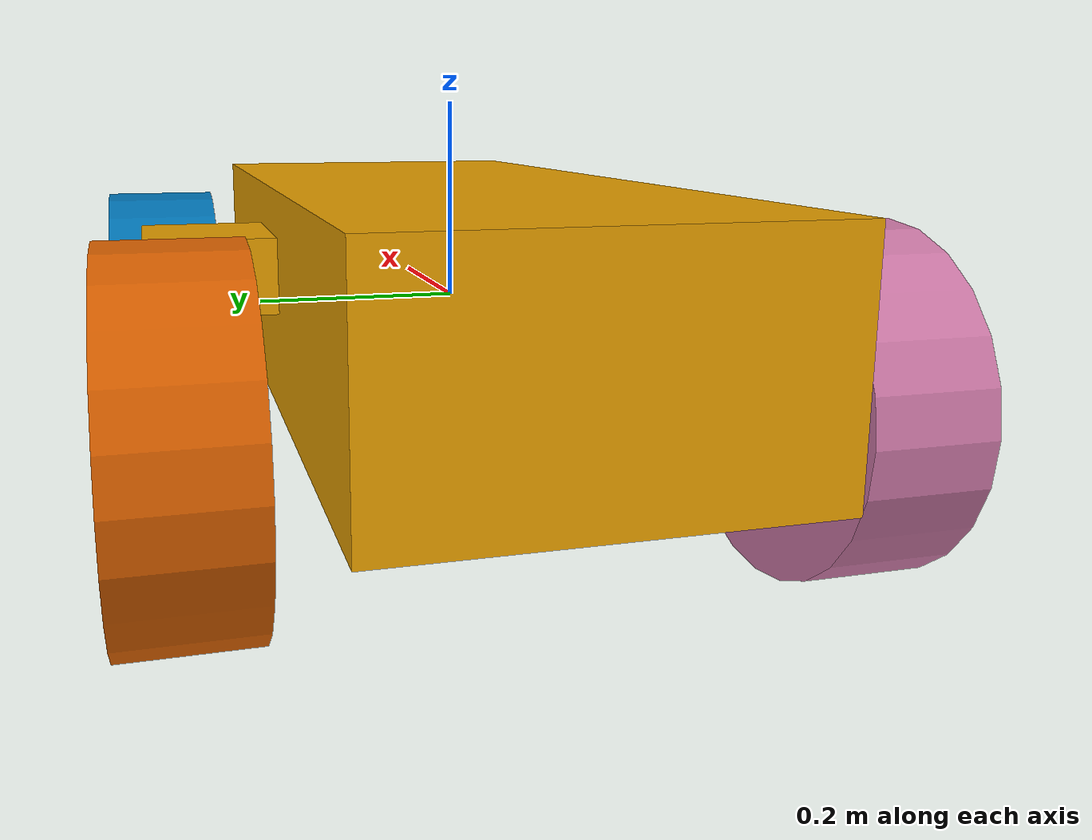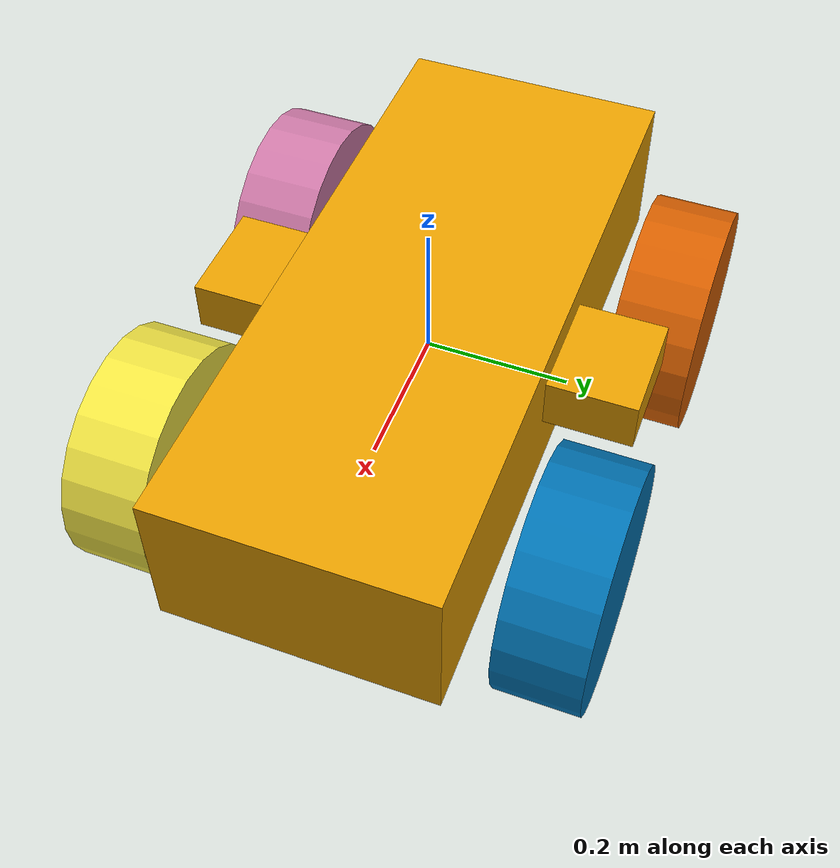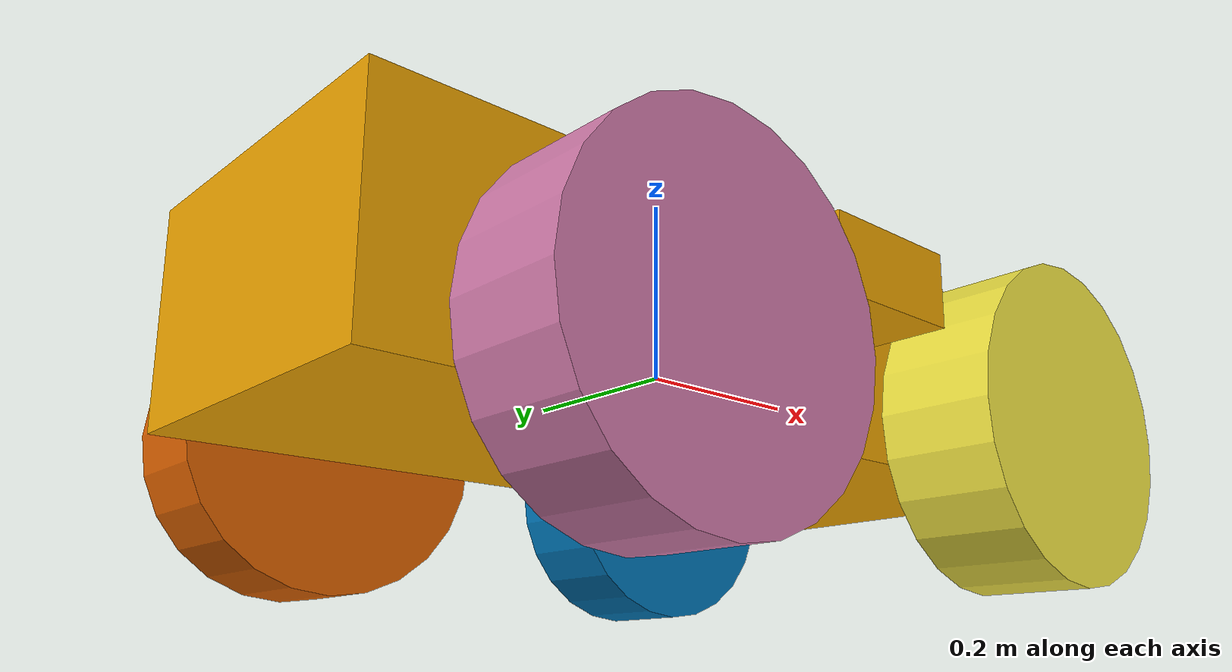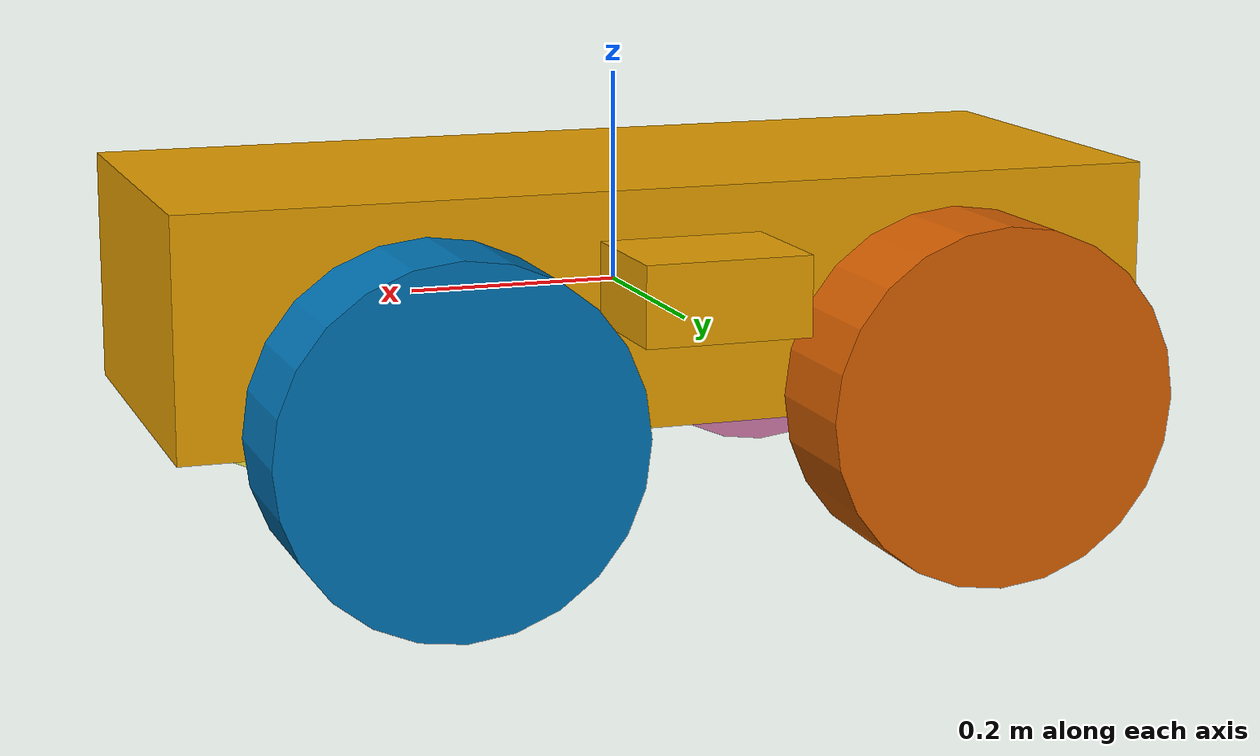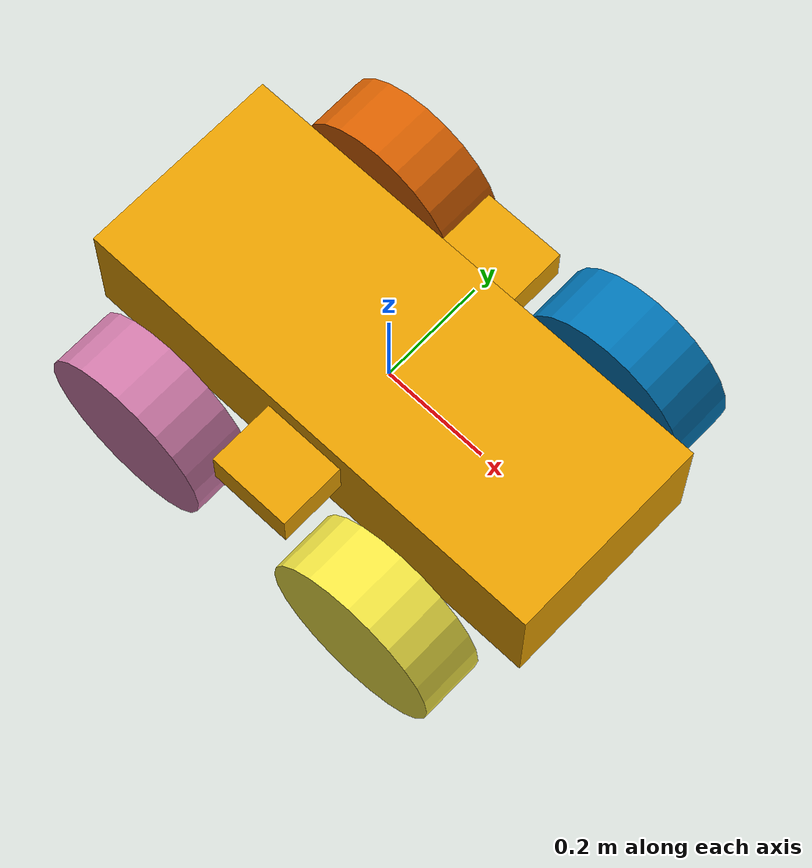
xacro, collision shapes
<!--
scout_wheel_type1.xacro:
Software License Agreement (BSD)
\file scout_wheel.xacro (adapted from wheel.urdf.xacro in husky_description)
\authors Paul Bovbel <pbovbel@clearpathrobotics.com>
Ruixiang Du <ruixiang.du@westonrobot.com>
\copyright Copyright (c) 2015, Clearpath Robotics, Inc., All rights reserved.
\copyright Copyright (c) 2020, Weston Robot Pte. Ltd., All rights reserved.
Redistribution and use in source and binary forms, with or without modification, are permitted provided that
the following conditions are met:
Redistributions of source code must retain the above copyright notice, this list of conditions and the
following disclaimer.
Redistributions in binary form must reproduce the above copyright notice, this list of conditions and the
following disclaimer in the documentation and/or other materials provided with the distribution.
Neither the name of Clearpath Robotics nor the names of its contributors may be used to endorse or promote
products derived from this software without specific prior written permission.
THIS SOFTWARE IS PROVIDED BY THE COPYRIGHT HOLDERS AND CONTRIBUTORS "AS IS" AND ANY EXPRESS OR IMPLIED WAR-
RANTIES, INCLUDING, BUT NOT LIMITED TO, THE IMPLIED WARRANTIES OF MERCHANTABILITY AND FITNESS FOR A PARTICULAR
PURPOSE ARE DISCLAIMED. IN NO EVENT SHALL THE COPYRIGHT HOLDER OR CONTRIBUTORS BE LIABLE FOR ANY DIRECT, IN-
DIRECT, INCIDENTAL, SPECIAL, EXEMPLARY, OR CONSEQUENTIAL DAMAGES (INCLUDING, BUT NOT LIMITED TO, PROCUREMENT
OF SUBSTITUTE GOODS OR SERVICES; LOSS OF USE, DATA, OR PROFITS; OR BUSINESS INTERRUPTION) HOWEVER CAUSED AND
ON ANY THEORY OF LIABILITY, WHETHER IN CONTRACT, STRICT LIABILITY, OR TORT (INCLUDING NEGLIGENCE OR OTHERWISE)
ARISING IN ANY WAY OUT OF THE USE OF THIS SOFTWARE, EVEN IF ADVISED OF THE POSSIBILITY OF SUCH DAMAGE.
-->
<?xml version="1.0"?>

<robot name="scout_v2"
    xmlns:xacro="http://ros.org/wiki/xacro">

    <xacro:arg name="robot_namespace" default="/" />

    <xacro:include filename="$(find scout_description)/urdf/scout_v2/scout_wheel_type1.xacro" />
    <xacro:include filename="$(find scout_description)/urdf/scout_v2/scout_wheel_type2.xacro" />

    <!-- Variables -->
    <xacro:property name="M_PI" value="3.14159"/>

    <!-- Vehicle Geometries -->
    <xacro:property name="base_x_size" value="0.9250000" />
    <xacro:property name="base_y_size" value="0.380000" />
    <xacro:property name="base_z_size" value="0.220000" />

    <xacro:property name="wheelbase" value="0.498" />
    <xacro:property name="track" value="0.58306" />
    <xacro:property name="wheel_vertical_offset" value="-0.0702" />

    <xacro:property name="wheel_length" value="0.11653" />
    <xacro:property name="wheel_radius" value="0.16459" />

    <!-- Base link -->
    <link name="base_link">
        <visual>
            <origin xyz="0 0 0" rpy="0 0 0" />
            <geometry>
                <mesh filename="package://scout_description/meshes/scout_v2/base_link.dae" />
            </geometry>
        </visual>
        <collision>
            <origin xyz="0 0 0.008" rpy="0 0 0" />
            <geometry>
                <box size="${base_x_size} ${base_y_size} ${base_z_size}"/>
            </geometry>
        </collision>
        <collision>
            <origin xyz="0 0 ${base_z_size/6}" rpy="0 0 0" />
            <geometry>
                <box size="${base_x_size/6} ${base_y_size*1.65} ${base_z_size/3}"/>
            </geometry>
        </collision>
    </link>

    <link name="base_footprint"/>

    <joint name="base_footprint_joint" type="fixed">
        <origin xyz="0 0 ${wheel_vertical_offset - wheel_radius}" rpy="0 0 0" />
        <parent link="base_link" />
        <child link="base_footprint" />
    </joint>

    <link name="inertial_link">
        <inertial>
            <mass value="40" />
            <origin xyz="0.0 0.0 0.0" />
            <inertia ixx="2.288641" ixy="0" ixz="0" iyy="5.103976" iyz="0" izz="3.431465" />
        </inertial>
    </link>

    <joint name="inertial_joint" type="fixed">
        <origin xyz="0 0 0" rpy="0 0 0" />
        <parent link="base_link" />
        <child link="inertial_link" />
    </joint>

    <!-- Scout wheel macros -->
    <!-- wheel labeled from 0 to 3, conter-clockwise, starting from front right wheel -->
    <!-- motor 1 and 2 (left side) are mechanically installed in a reversed direction -->
    <xacro:scout_wheel_type1 wheel_prefix="front_right">
        <origin xyz="${wheelbase/2} ${-track/2} ${wheel_vertical_offset}" rpy="${M_PI} 0 0" />
    </xacro:scout_wheel_type1>
    <xacro:scout_wheel_type2 wheel_prefix="front_left">
        <origin xyz="${wheelbase/2} ${track/2} ${wheel_vertical_offset}" rpy="${M_PI} 0 0" />
    </xacro:scout_wheel_type2>
    <xacro:scout_wheel_type1 wheel_prefix="rear_left">
        <origin xyz="${-wheelbase/2} ${track/2} ${wheel_vertical_offset}" rpy="${M_PI} 0 0" />
    </xacro:scout_wheel_type1>
    <xacro:scout_wheel_type2 wheel_prefix="rear_right">
        <origin xyz="${-wheelbase/2} ${-track/2} ${wheel_vertical_offset}" rpy="${M_PI} 0 0" />
    </xacro:scout_wheel_type2>

</robot>

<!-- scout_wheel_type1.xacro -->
<robot xmlns:xacro="http://ros.org/wiki/xacro" name="scout_wheel">

    <xacro:macro name="scout_wheel_type1" params="wheel_prefix *joint_pose">
        <link name="${wheel_prefix}_wheel_link">
            <inertial>
                <mass value="3" />
                <origin xyz="0 0 0" />
                <inertia ixx="0.023712" ixy="0" ixz="0" iyy="0.040635" iyz="0" izz="0.023712" />
            </inertial>
            <visual>
                <origin xyz="0 0 0" rpy="0 0 0" />
                <geometry>
                    <mesh filename="package://scout_description/meshes/scout_v2/wheel_type1.dae" />
                </geometry>
            </visual>
            <collision>
                <origin xyz="0 0 0" rpy="${M_PI/2} 0 0" />
                <geometry>
                    <cylinder length="${wheel_length}" radius="${wheel_radius}" />
                </geometry>
                <surface>
                    <friction>
                        <ode>
                        <!-- Coulomb friction coefficients (dimensionless) -->
                        <mu>5.0</mu>
                        <mu2>5.0</mu2>

                        <!-- Slip compliance (0 = no slip; small nonzero can help stability) -->
                        <slip1>0.01</slip1>
                        <slip2>0.01</slip2>
                        </ode>
                    </friction>

                    <contact>
                        <ode>
                        <!-- Contact stiffness/damping -->
                        <kp>1000000</kp>
                        <kd>100</kd>
                        </ode>
                    </contact>
                </surface>
            </collision>
        </link>

        <joint name="${wheel_prefix}_wheel" type="continuous">
            <parent link="base_link"/>
            <child link="${wheel_prefix}_wheel_link"/>
            <xacro:insert_block name="joint_pose"/>
            <axis xyz="0 -1 0" rpy="0 0 0" />
        </joint>
    </xacro:macro>

</robot>

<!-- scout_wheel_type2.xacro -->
<robot xmlns:xacro="http://ros.org/wiki/xacro" name="scout_wheel">

    <xacro:macro name="scout_wheel_type2" params="wheel_prefix *joint_pose">
        <link name="${wheel_prefix}_wheel_link">
            <inertial>
                <mass value="3" />
                <origin xyz="0 0 0" />

                <inertia ixx="0.023712" ixy="0" ixz="0" iyy="0.040635" iyz="0" izz="0.023712" />
            </inertial>
            <visual>
                <origin xyz="0 0 0" rpy="0 0 0" />
                <geometry>
                    <mesh filename="package://scout_description/meshes/scout_v2/wheel_type2.dae" />
                </geometry>
            </visual>
            <collision>
                <origin xyz="0 0 0" rpy="${M_PI/2} 0 0" />
                <geometry>
                    <cylinder length="${wheel_length}" radius="${wheel_radius}" />
                </geometry>
                <surface>
                    <friction>
                        <ode>
                        <!-- Coulomb friction coefficients (dimensionless) -->
                        <mu>5.0</mu>
                        <mu2>5.0</mu2>

                        <!-- Slip compliance (0 = no slip; small nonzero can help stability) -->
                        <slip1>0.01</slip1>
                        <slip2>0.01</slip2>
                        </ode>
                    </friction>

                    <contact>
                        <ode>
                        <!-- Contact stiffness/damping -->
                        <kp>1000000</kp>
                        <kd>100</kd>
                        </ode>
                    </contact>
                </surface>
            </collision>
        </link>

        <joint name="${wheel_prefix}_wheel" type="continuous">
            <parent link="base_link"/>
            <child link="${wheel_prefix}_wheel_link"/>
            <xacro:insert_block name="joint_pose"/>
            <axis xyz="0 -1 0" rpy="0 0 0" />
        </joint>
    </xacro:macro>

</robot>
